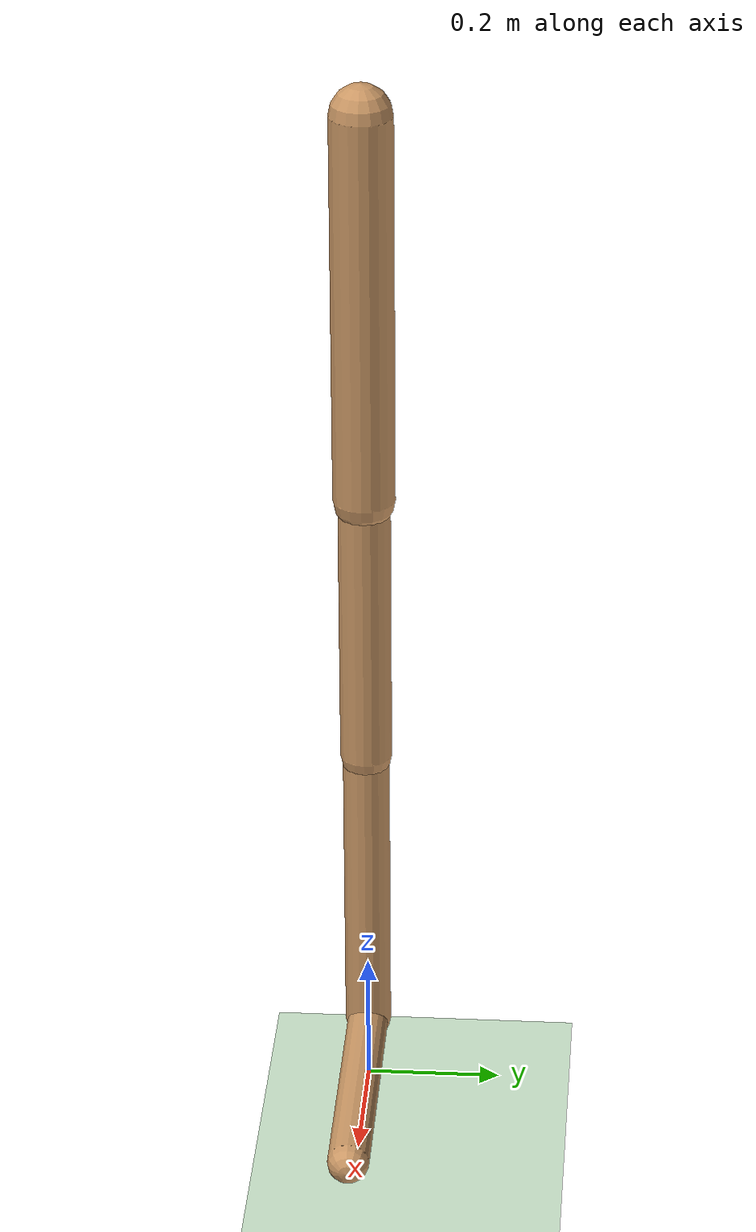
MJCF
<mujoco model="walker2d">
  <compiler angle="degree" inertiafromgeom="true" />
  <default>
    <joint armature="0.01" damping=".1" limited="true" />
    <geom conaffinity="0" condim="3" contype="1" density="1000" friction=".7 .1 .1" rgba="0.8 0.6 .4 1" />
  </default>
  <option integrator="RK4" timestep="0.002" />
  <worldbody>
    <light cutoff="100" diffuse="1 1 1" dir="-0 0 -1.3" directional="true" exponent="1" pos="0 0 1.3" specular=".1 .1 .1" />
    <geom conaffinity="1" condim="3" name="floor" pos="0 0 0" rgba="0.8 0.9 0.8 1" size="40 40 40" type="plane" material="MatPlane" />
    <body name="torso" pos="0 0 1.2757897138595582">
      <camera name="track" mode="trackcom" pos="0 -5 -1.25" xyaxes="1 0 0 0 0 1" />
      <joint armature="0" axis="1 0 0" damping="0" limited="false" name="rootx" pos="0 0 -1.25" stiffness="0" type="slide" />
      <joint armature="0" axis="0 0 1" damping="0" limited="false" name="rootz" pos="0 0 -1.25" ref="1.25" stiffness="0" type="slide" />
      <joint armature="0" axis="0 1 0" damping="0" limited="false" name="rooty" pos="0 0 0" stiffness="0" type="hinge" />
      <geom friction="0.9" name="torso_geom" size="0.04511810466647148 0.29099714756011963" type="capsule" />
      <body name="thigh" pos="0 0 -0.29099714756011963">
        <joint axis="0 -1 0" name="thigh_joint" pos="0 0 0" range="-150 0" type="hinge" />
        <site name="torso_thigh_site" pos="0 0 0" size="0.01" type="sphere" rgba="1 0 0 0.5" />
        <geom friction="0.9" pos="0 0 -0.20997357368469238" name="thigh_geom" size="0.03805046156048775 0.20997357368469238" type="capsule" />
        <body name="leg" pos="0 0 -0.6523698568344116">
          <joint axis="0 -1 0" name="leg_joint" pos="0 0 0.23242270946502686" range="-150 0" type="hinge" />
          <site name="thigh_leg_site" pos="0 0 0.25" size="0.01" type="sphere" rgba="1 0 0 0.5" />
          <geom friction="0.9" name="leg_geom" size="0.034452516585588455 0.23242270946502686" type="capsule" />
          <body name="foot" pos="0.3780675232410431 0 -0.33242270946502683">
            <joint axis="0 -1 0" name="foot_joint" pos="-0.3780675232410431 0 0.1" range="-45 45" type="hinge" />
            <site name="leg_foot_site" pos="-0.2 0 0.1" size="0.01" type="sphere" rgba="1 0 0 0.5" />
            <geom friction="0.9" pos="-0.18903376162052155 0 0.1" quat="0.70710678118654757 0 -0.70710678118654746 0" name="foot_geom" size="0.030674969777464867 0.18903376162052155" type="capsule" />
          </body>
        </body>
      </body>

      <body name="thigh_left" pos="0 0 -0.29099714756011963">
        <joint axis="0 -1 0" name="thigh_left_joint" pos="0 0 0" range="-150 0" type="hinge" />
        <site name="torso_thigh_left_site" pos="0 0 0" size="0.01" type="sphere" rgba="1 0 0 0.5" />
        <geom friction="0.9" name="thigh_left_geom" rgba=".7 .3 .6 1" size="0.03805046156048775 0.20997357368469238" pos="0 0 -0.20997357368469238" type="capsule" />
        <body name="leg_left" pos="0 0 -0.6523698568344116">
          <joint axis="0 -1 0" name="leg_left_joint" pos="0 0 0.23242270946502686" range="-150 0" type="hinge" />
          <site name="thigh_leg_left_site" pos="0 0 0.25" size="0.01" type="sphere" rgba="1 0 0 0.5" />
          <geom friction="0.9" name="leg_left_geom" rgba=".7 .3 .6 1" size="0.034452516585588455 0.23242270946502686" type="capsule" />
          <body name="foot_left" pos="0.3780675232410431 0 -0.33242270946502683">
            <joint axis="0 -1 0" name="foot_left_joint" pos="-0.3780675232410431 0 0.1" range="-45 45" type="hinge" />
            <site name="leg_foot_left_site" pos="-0.2 0 0.1" size="0.01" type="sphere" rgba="1 0 0 0.5" />
            <geom friction="1.9" name="foot_left_geom" rgba=".7 .3 .6 1" size="0.030674969777464867 0.18903376162052155" pos="-0.18903376162052155 0 0.1" type="capsule" quat="0.70710678118654757 0 -0.70710678118654746 0" />
          </body>
        </body>
      </body>
    </body>
  </worldbody>
  <actuator>

    <motor ctrllimited="true" ctrlrange="-1.0 1.0" gear="54.04580270743129" joint="thigh_joint" />
    <motor ctrllimited="true" ctrlrange="-1.0 1.0" gear="68.97003863347936" joint="leg_joint" />
    <motor ctrllimited="true" ctrlrange="-1.0 1.0" gear="49.4088974484678" joint="foot_joint" />
    <motor ctrllimited="true" ctrlrange="-1.0 1.0" gear="54.04580270743129" joint="thigh_left_joint" />
    <motor ctrllimited="true" ctrlrange="-1.0 1.0" gear="68.97003863347936" joint="leg_left_joint" />
    <motor ctrllimited="true" ctrlrange="-1.0 1.0" gear="49.4088974484678" joint="foot_left_joint" />

  </actuator>
    <asset>
        <texture type="skybox" builtin="gradient" rgb1=".4 .5 .6" rgb2="0 0 0" width="100" height="100" />
        <texture builtin="flat" height="1278" mark="cross" markrgb="1 1 1" name="texgeom" random="0.01" rgb1="0.8 0.6 0.4" rgb2="0.8 0.6 0.4" type="cube" width="127" />
        <texture builtin="checker" height="100" name="texplane" rgb1="0 0 0" rgb2="0.8 0.8 0.8" type="2d" width="100" />
        <material name="MatPlane" reflectance="0.5" shininess="1" specular="1" texrepeat="60 60" texture="texplane" />
        <material name="geom" texture="texgeom" texuniform="true" />
    </asset>

  <sensor>
    <force site="torso_thigh_site" name="torso_thigh_sensor" />
    <force site="thigh_leg_site" name="thigh_leg_sensor" />
    <force site="leg_foot_site" name="leg_foot_sensor" />
    <force site="torso_thigh_left_site" name="torso_thigh_left_sensor" />
    <force site="thigh_leg_left_site" name="thigh_leg_left_sensor" />
    <force site="leg_foot_left_site" name="leg_foot_left_sensor" />
  </sensor>
</mujoco>
